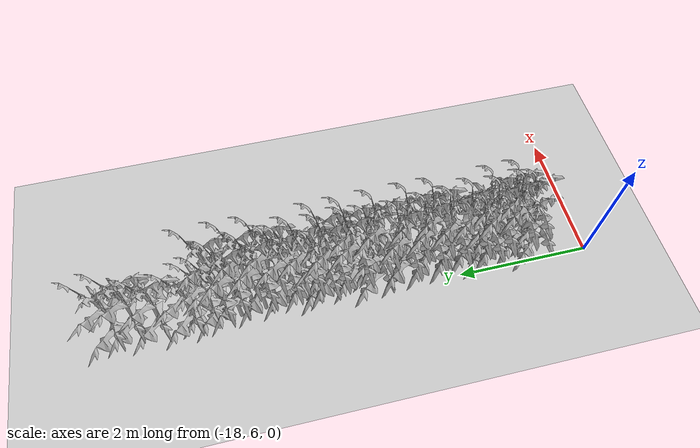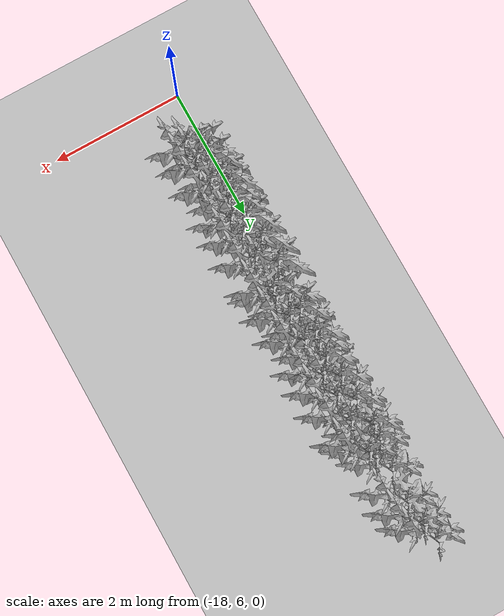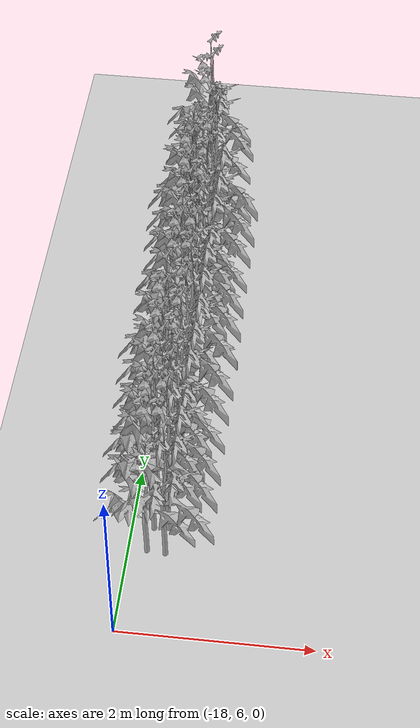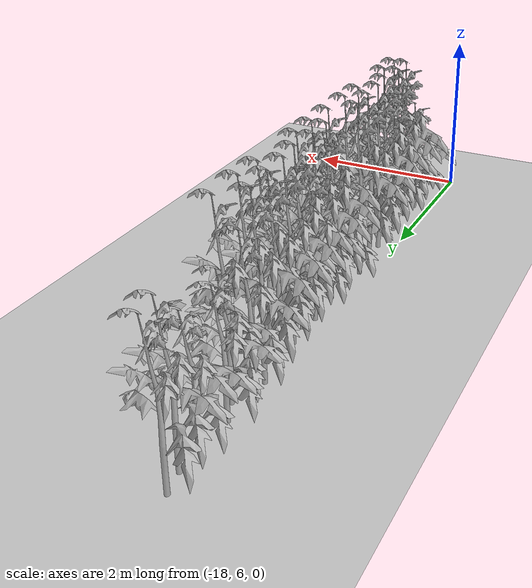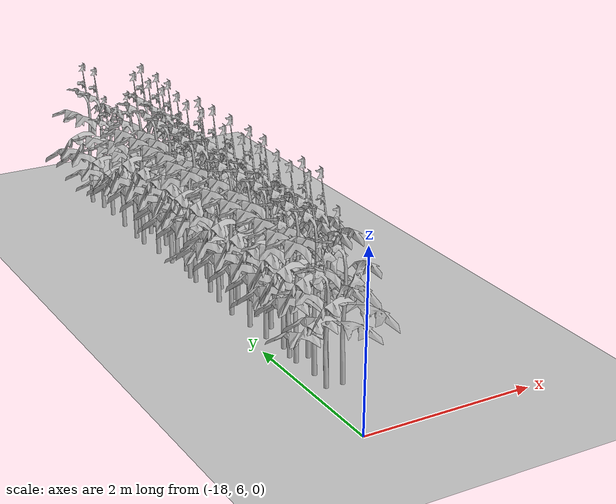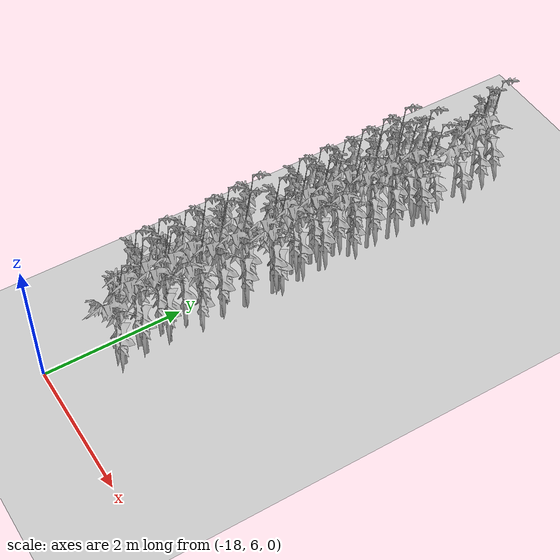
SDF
<sdf version="1.6">
 <world name="default">
  <model name="ground_plane">
   <static>1</static>
   <link name="link">
    <collision name="collision">
     <geometry><plane><normal>0 0 1</normal><size>100 100</size></plane></geometry>
     <surface>
      <contact><collide_bitmask>65535</collide_bitmask></contact>
      <friction><ode><mu>100</mu><mu2>50</mu2></ode></friction>
     </surface>
    </collision>
    <visual name="visual">
     <cast_shadows>0</cast_shadows>
     <geometry><plane><normal>0 0 1</normal><size>100 100</size></plane></geometry>
     <material>
      <script><uri>file://media/materials/scripts/gazebo.material</uri><name>Gazebo/Grey</name></script>
     </material>
    </visual>
   </link>
  </model>
  <model name="Middle_Plant_7">
   <model name="tomato_plant_big">
    <static>1</static>
    <link name="link">
     <collision name="collision">
      <geometry>
       <mesh><scale>5e-06 5e-06 6e-06</scale><uri>model://tomato_plant_big/meshes/tomato-plant.dae</uri></mesh>
      </geometry>
     </collision>
     <visual name="visual">
      <geometry>
       <mesh><scale>5e-06 5e-06 7e-06</scale><uri>model://tomato_plant_big/meshes/tomato-plant.dae</uri></mesh>
      </geometry>
     </visual>
    </link>
    <pose>0.085326 1.23023 0 0 -0 0</pose>
   </model>
   <model name="tomato_plant_big_0">
    <static>1</static>
    <link name="link">
     <collision name="collision">
      <geometry>
       <mesh><scale>5e-06 5e-06 6e-06</scale><uri>model://tomato_plant_big/meshes/tomato-plant.dae</uri></mesh>
      </geometry>
     </collision>
     <visual name="visual">
      <geometry>
       <mesh><scale>5e-06 5e-06 7e-06</scale><uri>model://tomato_plant_big/meshes/tomato-plant.dae</uri></mesh>
      </geometry>
     </visual>
    </link>
    <pose>-0.133881 0.970183 0 0 -0 0</pose>
   </model>
   <model name="tomato_plant_big_1">
    <static>1</static>
    <link name="link">
     <collision name="collision">
      <geometry>
       <mesh><scale>5e-06 5e-06 6e-06</scale><uri>model://tomato_plant_big/meshes/tomato-plant.dae</uri></mesh>
      </geometry>
     </collision>
     <visual name="visual">
      <geometry>
       <mesh><scale>5e-06 5e-06 7e-06</scale><uri>model://tomato_plant_big/meshes/tomato-plant.dae</uri></mesh>
      </geometry>
     </visual>
    </link>
    <pose>0.091162 0.792381 0 0 -0 0</pose>
   </model>
   <model name="tomato_plant_big_2">
    <static>1</static>
    <link name="link">
     <collision name="collision">
      <geometry>
       <mesh><scale>5e-06 5e-06 6e-06</scale><uri>model://tomato_plant_big/meshes/tomato-plant.dae</uri></mesh>
      </geometry>
     </collision>
     <visual name="visual">
      <geometry>
       <mesh><scale>5e-06 5e-06 7e-06</scale><uri>model://tomato_plant_big/meshes/tomato-plant.dae</uri></mesh>
      </geometry>
     </visual>
    </link>
    <pose>-0.099228 0.602587 0 0 -0 0</pose>
   </model>
   <model name="tomato_plant_big_3">
    <static>1</static>
    <link name="link">
     <collision name="collision">
      <geometry>
       <mesh><scale>5e-06 5e-06 6e-06</scale><uri>model://tomato_plant_big/meshes/tomato-plant.dae</uri></mesh>
      </geometry>
     </collision>
     <visual name="visual">
      <geometry>
       <mesh><scale>5e-06 5e-06 7e-06</scale><uri>model://tomato_plant_big/meshes/tomato-plant.dae</uri></mesh>
      </geometry>
     </visual>
    </link>
    <pose>0.083199 0.447645 0 0 -0 0</pose>
   </model>
   <model name="tomato_plant_big_4">
    <static>1</static>
    <link name="link">
     <collision name="collision">
      <geometry>
       <mesh><scale>5e-06 5e-06 6e-06</scale><uri>model://tomato_plant_big/meshes/tomato-plant.dae</uri></mesh>
      </geometry>
     </collision>
     <visual name="visual">
      <geometry>
       <mesh><scale>5e-06 5e-06 7e-06</scale><uri>model://tomato_plant_big/meshes/tomato-plant.dae</uri></mesh>
      </geometry>
     </visual>
    </link>
    <pose>-0.079499 0.263486 0 0 -0 0</pose>
   </model>
   <model name="tomato_plant_big_5">
    <static>1</static>
    <link name="link">
     <collision name="collision">
      <geometry>
       <mesh><scale>5e-06 5e-06 6e-06</scale><uri>model://tomato_plant_big/meshes/tomato-plant.dae</uri></mesh>
      </geometry>
     </collision>
     <visual name="visual">
      <geometry>
       <mesh><scale>5e-06 5e-06 7e-06</scale><uri>model://tomato_plant_big/meshes/tomato-plant.dae</uri></mesh>
      </geometry>
     </visual>
    </link>
    <pose>-0.033274 -0.040578 0 0 -0 0</pose>
   </model>
   <model name="tomato_plant_big_6">
    <static>1</static>
    <link name="link">
     <collision name="collision">
      <geometry>
       <mesh><scale>5e-06 5e-06 6e-06</scale><uri>model://tomato_plant_big/meshes/tomato-plant.dae</uri></mesh>
      </geometry>
     </collision>
     <visual name="visual">
      <geometry>
       <mesh><scale>5e-06 5e-06 7e-06</scale><uri>model://tomato_plant_big/meshes/tomato-plant.dae</uri></mesh>
      </geometry>
     </visual>
    </link>
    <pose>-0.07669 -0.382406 0 0 -0 0</pose>
   </model>
   <model name="tomato_plant_big_7">
    <static>1</static>
    <link name="link">
     <collision name="collision">
      <geometry>
       <mesh><scale>5e-06 5e-06 6e-06</scale><uri>model://tomato_plant_big/meshes/tomato-plant.dae</uri></mesh>
      </geometry>
     </collision>
     <visual name="visual">
      <geometry>
       <mesh><scale>5e-06 5e-06 7e-06</scale><uri>model://tomato_plant_big/meshes/tomato-plant.dae</uri></mesh>
      </geometry>
     </visual>
    </link>
    <pose>0.092388 -0.348189 0 0 -0 0</pose>
   </model>
   <model name="tomato_plant_big_8">
    <static>1</static>
    <link name="link">
     <collision name="collision">
      <geometry>
       <mesh><scale>5e-06 5e-06 6e-06</scale><uri>model://tomato_plant_big/meshes/tomato-plant.dae</uri></mesh>
      </geometry>
     </collision>
     <visual name="visual">
      <geometry>
       <mesh><scale>5e-06 5e-06 7e-06</scale><uri>model://tomato_plant_big/meshes/tomato-plant.dae</uri></mesh>
      </geometry>
     </visual>
    </link>
    <pose>0.099522 -0.697525 0 0 -0 0</pose>
   </model>
   <model name="tomato_plant_big_9">
    <static>1</static>
    <link name="link">
     <collision name="collision">
      <geometry>
       <mesh><scale>5e-06 5e-06 6e-06</scale><uri>model://tomato_plant_big/meshes/tomato-plant.dae</uri></mesh>
      </geometry>
     </collision>
     <visual name="visual">
      <geometry>
       <mesh><scale>5e-06 5e-06 7e-06</scale><uri>model://tomato_plant_big/meshes/tomato-plant.dae</uri></mesh>
      </geometry>
     </visual>
    </link>
    <pose>-0.050449 -0.712772 0 0 -0 0</pose>
   </model>
   <model name="tomato_plant_medium">
    <static>1</static>
    <link name="link">
     <collision name="collision">
      <geometry>
       <mesh><scale>5e-06 5e-06 6e-06</scale><uri>model://tomato_plant_medium/meshes/tomato-plant.dae</uri></mesh>
      </geometry>
     </collision>
     <visual name="visual">
      <geometry>
       <mesh><scale>5e-06 5e-06 6e-06</scale><uri>model://tomato_plant_medium/meshes/tomato-plant.dae</uri></mesh>
      </geometry>
     </visual>
    </link>
    <pose>0.078434 0.139842 0 0 -0 0</pose>
   </model>
   <model name="tomato_plant_medium_0">
    <static>1</static>
    <link name="link">
     <collision name="collision">
      <geometry>
       <mesh><scale>5e-06 5e-06 6e-06</scale><uri>model://tomato_plant_medium/meshes/tomato-plant.dae</uri></mesh>
      </geometry>
     </collision>
     <visual name="visual">
      <geometry>
       <mesh><scale>5e-06 5e-06 6e-06</scale><uri>model://tomato_plant_medium/meshes/tomato-plant.dae</uri></mesh>
      </geometry>
     </visual>
    </link>
    <pose>-0.079755 -0.244483 0 0 -0 0</pose>
   </model>
   <model name="tomato_plant_medium_1">
    <static>1</static>
    <link name="link">
     <collision name="collision">
      <geometry>
       <mesh><scale>5e-06 5e-06 6e-06</scale><uri>model://tomato_plant_medium/meshes/tomato-plant.dae</uri></mesh>
      </geometry>
     </collision>
     <visual name="visual">
      <geometry>
       <mesh><scale>5e-06 5e-06 6e-06</scale><uri>model://tomato_plant_medium/meshes/tomato-plant.dae</uri></mesh>
      </geometry>
     </visual>
    </link>
    <pose>0.106744 -1.01815 0 0 -0 0</pose>
   </model>
   <model name="tomato_plant_small">
    <static>1</static>
    <link name="link">
     <collision name="collision">
      <geometry>
       <mesh><scale>5e-06 5e-06 5e-06</scale><uri>model://tomato_plant_small/meshes/tomato-plant.dae</uri></mesh>
      </geometry>
     </collision>
     <visual name="visual">
      <geometry>
       <mesh><scale>5e-06 5e-06 5e-06</scale><uri>model://tomato_plant_small/meshes/tomato-plant.dae</uri></mesh>
      </geometry>
     </visual>
    </link>
    <pose>-0.083979 -1.00222 0 0 -0 0</pose>
   </model>
   <static>0</static>
   <pose>-17.7143 7.9891 0 0 -0 0</pose>
  </model>
  <model name="Middle_Plant_8">
   <model name="tomato_plant_big">
    <static>1</static>
    <link name="link">
     <collision name="collision">
      <geometry>
       <mesh><scale>5e-06 5e-06 6e-06</scale><uri>model://tomato_plant_big/meshes/tomato-plant.dae</uri></mesh>
      </geometry>
     </collision>
     <visual name="visual">
      <geometry>
       <mesh><scale>5e-06 5e-06 7e-06</scale><uri>model://tomato_plant_big/meshes/tomato-plant.dae</uri></mesh>
      </geometry>
     </visual>
    </link>
    <pose>0.085326 1.23023 0 0 -0 0</pose>
   </model>
   <model name="tomato_plant_big_0">
    <static>1</static>
    <link name="link">
     <collision name="collision">
      <geometry>
       <mesh><scale>5e-06 5e-06 6e-06</scale><uri>model://tomato_plant_big/meshes/tomato-plant.dae</uri></mesh>
      </geometry>
     </collision>
     <visual name="visual">
      <geometry>
       <mesh><scale>5e-06 5e-06 7e-06</scale><uri>model://tomato_plant_big/meshes/tomato-plant.dae</uri></mesh>
      </geometry>
     </visual>
    </link>
    <pose>-0.133881 0.970183 0 0 -0 0</pose>
   </model>
   <model name="tomato_plant_big_1">
    <static>1</static>
    <link name="link">
     <collision name="collision">
      <geometry>
       <mesh><scale>5e-06 5e-06 6e-06</scale><uri>model://tomato_plant_big/meshes/tomato-plant.dae</uri></mesh>
      </geometry>
     </collision>
     <visual name="visual">
      <geometry>
       <mesh><scale>5e-06 5e-06 7e-06</scale><uri>model://tomato_plant_big/meshes/tomato-plant.dae</uri></mesh>
      </geometry>
     </visual>
    </link>
    <pose>0.091162 0.792381 0 0 -0 0</pose>
   </model>
   <model name="tomato_plant_big_2">
    <static>1</static>
    <link name="link">
     <collision name="collision">
      <geometry>
       <mesh><scale>5e-06 5e-06 6e-06</scale><uri>model://tomato_plant_big/meshes/tomato-plant.dae</uri></mesh>
      </geometry>
     </collision>
     <visual name="visual">
      <geometry>
       <mesh><scale>5e-06 5e-06 7e-06</scale><uri>model://tomato_plant_big/meshes/tomato-plant.dae</uri></mesh>
      </geometry>
     </visual>
    </link>
    <pose>-0.099228 0.602587 0 0 -0 0</pose>
   </model>
   <model name="tomato_plant_big_3">
    <static>1</static>
    <link name="link">
     <collision name="collision">
      <geometry>
       <mesh><scale>5e-06 5e-06 6e-06</scale><uri>model://tomato_plant_big/meshes/tomato-plant.dae</uri></mesh>
      </geometry>
     </collision>
     <visual name="visual">
      <geometry>
       <mesh><scale>5e-06 5e-06 7e-06</scale><uri>model://tomato_plant_big/meshes/tomato-plant.dae</uri></mesh>
      </geometry>
     </visual>
    </link>
    <pose>0.083199 0.447645 0 0 -0 0</pose>
   </model>
   <model name="tomato_plant_big_4">
    <static>1</static>
    <link name="link">
     <collision name="collision">
      <geometry>
       <mesh><scale>5e-06 5e-06 6e-06</scale><uri>model://tomato_plant_big/meshes/tomato-plant.dae</uri></mesh>
      </geometry>
     </collision>
     <visual name="visual">
      <geometry>
       <mesh><scale>5e-06 5e-06 7e-06</scale><uri>model://tomato_plant_big/meshes/tomato-plant.dae</uri></mesh>
      </geometry>
     </visual>
    </link>
    <pose>-0.079499 0.263486 0 0 -0 0</pose>
   </model>
   <model name="tomato_plant_big_5">
    <static>1</static>
    <link name="link">
     <collision name="collision">
      <geometry>
       <mesh><scale>5e-06 5e-06 6e-06</scale><uri>model://tomato_plant_big/meshes/tomato-plant.dae</uri></mesh>
      </geometry>
     </collision>
     <visual name="visual">
      <geometry>
       <mesh><scale>5e-06 5e-06 7e-06</scale><uri>model://tomato_plant_big/meshes/tomato-plant.dae</uri></mesh>
      </geometry>
     </visual>
    </link>
    <pose>-0.033274 -0.040578 0 0 -0 0</pose>
   </model>
   <model name="tomato_plant_big_6">
    <static>1</static>
    <link name="link">
     <collision name="collision">
      <geometry>
       <mesh><scale>5e-06 5e-06 6e-06</scale><uri>model://tomato_plant_big/meshes/tomato-plant.dae</uri></mesh>
      </geometry>
     </collision>
     <visual name="visual">
      <geometry>
       <mesh><scale>5e-06 5e-06 7e-06</scale><uri>model://tomato_plant_big/meshes/tomato-plant.dae</uri></mesh>
      </geometry>
     </visual>
    </link>
    <pose>-0.07669 -0.382406 0 0 -0 0</pose>
   </model>
   <model name="tomato_plant_big_7">
    <static>1</static>
    <link name="link">
     <collision name="collision">
      <geometry>
       <mesh><scale>5e-06 5e-06 6e-06</scale><uri>model://tomato_plant_big/meshes/tomato-plant.dae</uri></mesh>
      </geometry>
     </collision>
     <visual name="visual">
      <geometry>
       <mesh><scale>5e-06 5e-06 7e-06</scale><uri>model://tomato_plant_big/meshes/tomato-plant.dae</uri></mesh>
      </geometry>
     </visual>
    </link>
    <pose>0.092388 -0.348189 0 0 -0 0</pose>
   </model>
   <model name="tomato_plant_big_8">
    <static>1</static>
    <link name="link">
     <collision name="collision">
      <geometry>
       <mesh><scale>5e-06 5e-06 6e-06</scale><uri>model://tomato_plant_big/meshes/tomato-plant.dae</uri></mesh>
      </geometry>
     </collision>
     <visual name="visual">
      <geometry>
       <mesh><scale>5e-06 5e-06 7e-06</scale><uri>model://tomato_plant_big/meshes/tomato-plant.dae</uri></mesh>
      </geometry>
     </visual>
    </link>
    <pose>0.099522 -0.697525 0 0 -0 0</pose>
   </model>
   <model name="tomato_plant_big_9">
    <static>1</static>
    <link name="link">
     <collision name="collision">
      <geometry>
       <mesh><scale>5e-06 5e-06 6e-06</scale><uri>model://tomato_plant_big/meshes/tomato-plant.dae</uri></mesh>
      </geometry>
     </collision>
     <visual name="visual">
      <geometry>
       <mesh><scale>5e-06 5e-06 7e-06</scale><uri>model://tomato_plant_big/meshes/tomato-plant.dae</uri></mesh>
      </geometry>
     </visual>
    </link>
    <pose>-0.050449 -0.712772 0 0 -0 0</pose>
   </model>
   <model name="tomato_plant_medium">
    <static>1</static>
    <link name="link">
     <collision name="collision">
      <geometry>
       <mesh><scale>5e-06 5e-06 6e-06</scale><uri>model://tomato_plant_medium/meshes/tomato-plant.dae</uri></mesh>
      </geometry>
     </collision>
     <visual name="visual">
      <geometry>
       <mesh><scale>5e-06 5e-06 6e-06</scale><uri>model://tomato_plant_medium/meshes/tomato-plant.dae</uri></mesh>
      </geometry>
     </visual>
    </link>
    <pose>0.078434 0.139842 0 0 -0 0</pose>
   </model>
   <model name="tomato_plant_medium_0">
    <static>1</static>
    <link name="link">
     <collision name="collision">
      <geometry>
       <mesh><scale>5e-06 5e-06 6e-06</scale><uri>model://tomato_plant_medium/meshes/tomato-plant.dae</uri></mesh>
      </geometry>
     </collision>
     <visual name="visual">
      <geometry>
       <mesh><scale>5e-06 5e-06 6e-06</scale><uri>model://tomato_plant_medium/meshes/tomato-plant.dae</uri></mesh>
      </geometry>
     </visual>
    </link>
    <pose>-0.079755 -0.244483 0 0 -0 0</pose>
   </model>
   <model name="tomato_plant_medium_1">
    <static>1</static>
    <link name="link">
     <collision name="collision">
      <geometry>
       <mesh><scale>5e-06 5e-06 6e-06</scale><uri>model://tomato_plant_medium/meshes/tomato-plant.dae</uri></mesh>
      </geometry>
     </collision>
     <visual name="visual">
      <geometry>
       <mesh><scale>5e-06 5e-06 6e-06</scale><uri>model://tomato_plant_medium/meshes/tomato-plant.dae</uri></mesh>
      </geometry>
     </visual>
    </link>
    <pose>0.106744 -1.01815 0 0 -0 0</pose>
   </model>
   <model name="tomato_plant_small">
    <static>1</static>
    <link name="link">
     <collision name="collision">
      <geometry>
       <mesh><scale>5e-06 5e-06 5e-06</scale><uri>model://tomato_plant_small/meshes/tomato-plant.dae</uri></mesh>
      </geometry>
     </collision>
     <visual name="visual">
      <geometry>
       <mesh><scale>5e-06 5e-06 5e-06</scale><uri>model://tomato_plant_small/meshes/tomato-plant.dae</uri></mesh>
      </geometry>
     </visual>
    </link>
    <pose>-0.083979 -1.00222 0 0 -0 0</pose>
   </model>
   <static>0</static>
   <pose>-17.7366 10.3259 0 0 -0 0</pose>
  </model>
  <model name="tomato_plant_medium_3">
   <static>1</static>
   <link name="link">
    <collision name="collision">
     <geometry>
      <mesh><scale>5e-06 5e-06 6e-06</scale><uri>model://tomato_plant_medium/meshes/tomato-plant.dae</uri></mesh>
     </geometry>
    </collision>
    <visual name="visual">
     <geometry>
      <mesh><scale>5e-06 5e-06 6e-06</scale><uri>model://tomato_plant_medium/meshes/tomato-plant.dae</uri></mesh>
     </geometry>
    </visual>
   </link>
   <pose>-17.8706 11.5165 0 0 -0 0</pose>
  </model>
  <model name="tomato_plant_small_5">
   <static>1</static>
   <link name="link">
    <collision name="collision">
     <geometry>
      <mesh><scale>5e-06 5e-06 5e-06</scale><uri>model://tomato_plant_small/meshes/tomato-plant.dae</uri></mesh>
     </geometry>
    </collision>
    <visual name="visual">
     <geometry>
      <mesh><scale>5e-06 5e-06 5e-06</scale><uri>model://tomato_plant_small/meshes/tomato-plant.dae</uri></mesh>
     </geometry>
    </visual>
   </link>
   <pose>-17.7451 11.7052 0 0 -0 0</pose>
  </model>
  <model name="tomato_plant_small_6">
   <static>1</static>
   <link name="link">
    <collision name="collision">
     <geometry>
      <mesh><scale>5e-06 5e-06 5e-06</scale><uri>model://tomato_plant_small/meshes/tomato-plant.dae</uri></mesh>
     </geometry>
    </collision>
    <visual name="visual">
     <geometry>
      <mesh><scale>5e-06 5e-06 5e-06</scale><uri>model://tomato_plant_small/meshes/tomato-plant.dae</uri></mesh>
     </geometry>
    </visual>
   </link>
   <pose>-17.8469 11.9469 0 0 -0 0</pose>
  </model>
  <model name="tomato_plant_small_8">
   <static>1</static>
   <link name="link">
    <collision name="collision">
     <geometry>
      <mesh><scale>5e-06 5e-06 5e-06</scale><uri>model://tomato_plant_small/meshes/tomato-plant.dae</uri></mesh>
     </geometry>
    </collision>
    <visual name="visual">
     <geometry>
      <mesh><scale>5e-06 5e-06 5e-06</scale><uri>model://tomato_plant_small/meshes/tomato-plant.dae</uri></mesh>
     </geometry>
    </visual>
   </link>
   <pose>-17.8211 12.3853 0 0 -0 0</pose>
  </model>
  <model name="tomato_plant_medium_4">
   <static>1</static>
   <link name="link">
    <collision name="collision">
     <geometry>
      <mesh><scale>5e-06 5e-06 6e-06</scale><uri>model://tomato_plant_medium/meshes/tomato-plant.dae</uri></mesh>
     </geometry>
    </collision>
    <visual name="visual">
     <geometry>
      <mesh><scale>5e-06 5e-06 6e-06</scale><uri>model://tomato_plant_medium/meshes/tomato-plant.dae</uri></mesh>
     </geometry>
    </visual>
   </link>
   <pose>-17.8215 12.687 0 0 -0 0</pose>
  </model>
  <model name="tomato_plant_medium_5">
   <static>1</static>
   <link name="link">
    <collision name="collision">
     <geometry>
      <mesh><scale>5e-06 5e-06 6e-06</scale><uri>model://tomato_plant_medium/meshes/tomato-plant.dae</uri></mesh>
     </geometry>
    </collision>
    <visual name="visual">
     <geometry>
      <mesh><scale>5e-06 5e-06 6e-06</scale><uri>model://tomato_plant_medium/meshes/tomato-plant.dae</uri></mesh>
     </geometry>
    </visual>
   </link>
   <pose>-17.8768 12.9461 0 0 -0 0</pose>
  </model>
 </world>
</sdf>
